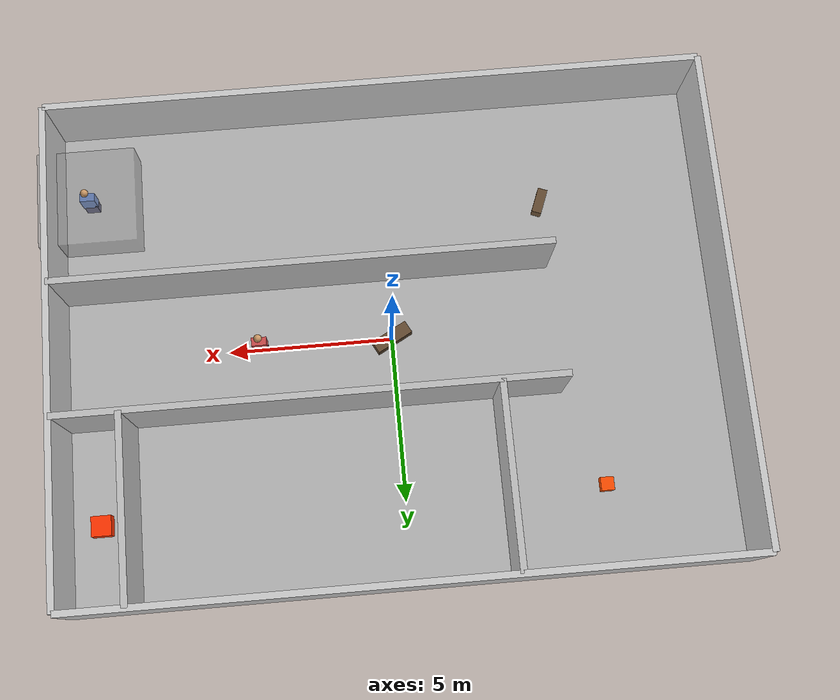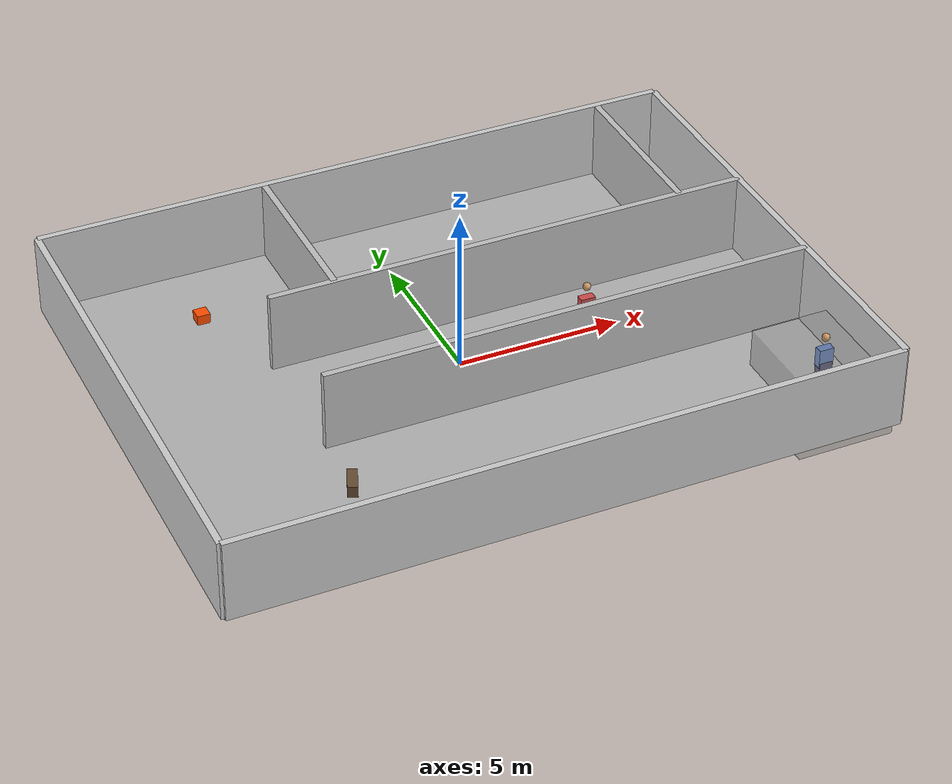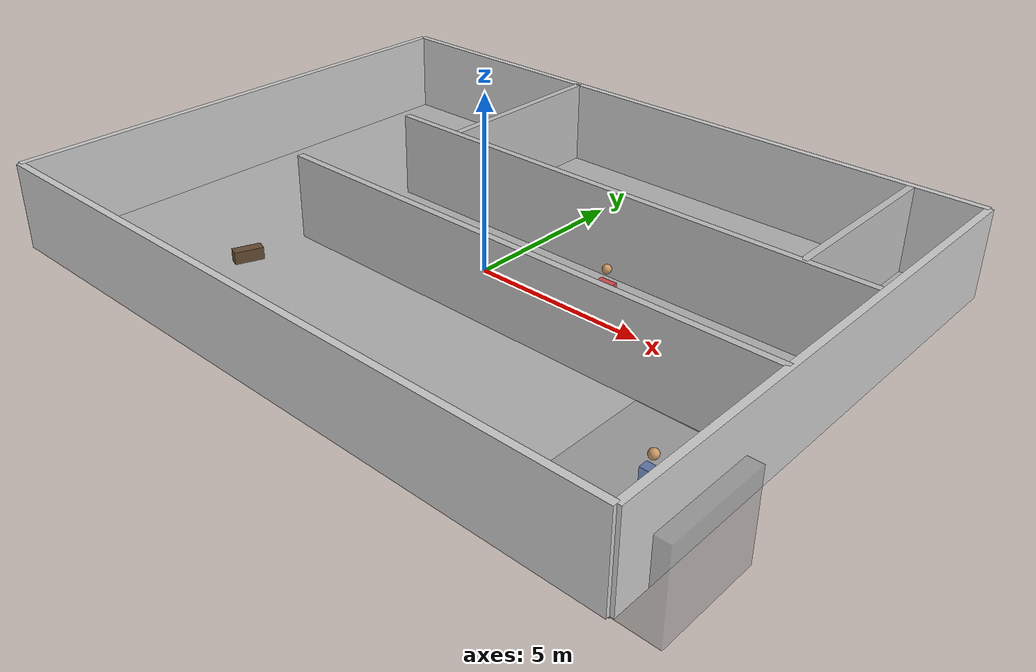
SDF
<sdf version="1.8">
 <world name="fire_building">
  <physics name="1ms" type="ignored">
   <max_step_size>0.001</max_step_size>
   <real_time_factor>1.0</real_time_factor>
  </physics>
  <plugin filename="gz-sim-physics-system" name="gz::sim::systems::Physics"/>
  <plugin filename="gz-sim-user-commands-system" name="gz::sim::systems::UserCommands"/>
  <plugin filename="gz-sim-scene-broadcaster-system" name="gz::sim::systems::SceneBroadcaster"/>
  <plugin filename="gz-sim-sensors-system" name="gz::sim::systems::Sensors">
   <render_engine>ogre2</render_engine>
  </plugin>
  <ambient>0.8 0.8 0.8 1</ambient>
  <background>0.3 0.3 0.3 1</background>
  <light name="sun" type="directional">
   <pose>0 0 10 0 0 0</pose>
   <diffuse>0.9 0.9 0.9 1</diffuse>
   <specular>0.3 0.3 0.3 1</specular>
   <direction>-0.5 0.1 -0.9</direction>
   <attenuation>
    <range>1000</range>
    <constant>0.9</constant>
    <linear>0.01</linear>
    <quadratic>0.001</quadratic>
   </attenuation>
  </light>
  <model name="ground">
   <static>true</static>
   <link name="floor">
    <collision name="col"><geometry><box><size>20 15 0.1</size></box></geometry></collision>
    <visual name="vis">
     <geometry><box><size>20 15 0.1</size></box></geometry>
     <material><ambient>0.7 0.7 0.7 1</ambient><diffuse>0.7 0.7 0.7 1</diffuse></material>
    </visual>
   </link>
  </model>
  <model name="wall_north">
   <static>true</static>
   <pose>0 7.5 1.25 0 0 0</pose>
   <link name="link">
    <collision name="col"><geometry><box><size>20 0.2 2.5</size></box></geometry></collision>
    <visual name="vis">
     <geometry><box><size>20 0.2 2.5</size></box></geometry>
     <material><ambient>0.8 0.8 0.8 1</ambient></material>
    </visual>
   </link>
  </model>
  <model name="wall_south">
   <static>true</static>
   <pose>0 -7.5 1.25 0 0 0</pose>
   <link name="link">
    <collision name="col"><geometry><box><size>20 0.2 2.5</size></box></geometry></collision>
    <visual name="vis">
     <geometry><box><size>20 0.2 2.5</size></box></geometry>
     <material><ambient>0.8 0.8 0.8 1</ambient></material>
    </visual>
   </link>
  </model>
  <model name="wall_east">
   <static>true</static>
   <pose>10 0 1.25 0 0 0</pose>
   <link name="link">
    <collision name="col"><geometry><box><size>0.2 15 2.5</size></box></geometry></collision>
    <visual name="vis">
     <geometry><box><size>0.2 15 2.5</size></box></geometry>
     <material><ambient>0.8 0.8 0.8 1</ambient></material>
    </visual>
   </link>
  </model>
  <model name="wall_west">
   <static>true</static>
   <pose>-10 0 1.25 0 0 0</pose>
   <link name="link">
    <collision name="col"><geometry><box><size>0.2 15 2.5</size></box></geometry></collision>
    <visual name="vis">
     <geometry><box><size>0.2 15 2.5</size></box></geometry>
     <material><ambient>0.8 0.8 0.8 1</ambient></material>
    </visual>
   </link>
  </model>
  <model name="wall_corridor_north">
   <static>true</static>
   <pose>2.5 2 1.25 0 0 0</pose>
   <link name="link">
    <collision name="col"><geometry><box><size>15 0.2 2.5</size></box></geometry></collision>
    <visual name="vis">
     <geometry><box><size>15 0.2 2.5</size></box></geometry>
     <material><ambient>0.75 0.75 0.75 1</ambient></material>
    </visual>
   </link>
  </model>
  <model name="wall_corridor_south">
   <static>true</static>
   <pose>2.5 -2 1.25 0 0 0</pose>
   <link name="link">
    <collision name="col"><geometry><box><size>15 0.2 2.5</size></box></geometry></collision>
    <visual name="vis">
     <geometry><box><size>15 0.2 2.5</size></box></geometry>
     <material><ambient>0.75 0.75 0.75 1</ambient></material>
    </visual>
   </link>
  </model>
  <model name="wall_vert_left">
   <static>true</static>
   <pose>-3 4.75 1.25 0 0 0</pose>
   <link name="link">
    <collision name="col"><geometry><box><size>0.2 5.5 2.5</size></box></geometry></collision>
    <visual name="vis">
     <geometry><box><size>0.2 5.5 2.5</size></box></geometry>
     <material><ambient>0.75 0.75 0.75 1</ambient></material>
    </visual>
   </link>
  </model>
  <model name="wall_vert_right">
   <static>true</static>
   <pose>8 4.75 1.25 0 0 0</pose>
   <link name="link">
    <collision name="col"><geometry><box><size>0.2 5.5 2.5</size></box></geometry></collision>
    <visual name="vis">
     <geometry><box><size>0.2 5.5 2.5</size></box></geometry>
     <material><ambient>0.75 0.75 0.75 1</ambient></material>
    </visual>
   </link>
  </model>
  <model name="fire_1">
   <static>true</static>
   <pose>-6 5 0.05 0 0 0</pose>
   <link name="link">
    <visual name="vis">
     <geometry><box><size>0.4 0.4 0.6</size></box></geometry>
     <material>
      <ambient>1.0 0.3 0.0 1</ambient>
      <diffuse>1.0 0.3 0.0 1</diffuse>
      <emissive>1.0 0.2 0.0 1</emissive>
     </material>
    </visual>
   </link>
  </model>
  <light name="fire_light_1" type="point">
   <pose>-6 5 0.8 0 0 0</pose>
   <diffuse>1.0 0.4 0.0 1</diffuse>
   <specular>0.5 0.2 0.0 1</specular>
   <attenuation><range>4</range><linear>0.5</linear><quadratic>0.2</quadratic></attenuation>
  </light>
  <model name="fire_2">
   <static>true</static>
   <pose>9 5 0.05 0 0 0</pose>
   <link name="link">
    <visual name="vis">
     <geometry><box><size>0.6 0.6 0.9</size></box></geometry>
     <material>
      <ambient>1.0 0.2 0.0 1</ambient>
      <diffuse>1.0 0.2 0.0 1</diffuse>
      <emissive>1.0 0.15 0.0 1</emissive>
     </material>
    </visual>
   </link>
  </model>
  <light name="fire_light_2" type="point">
   <pose>9 5 1.2 0 0 0</pose>
   <diffuse>1.0 0.3 0.0 1</diffuse>
   <specular>0.5 0.1 0.0 1</specular>
   <attenuation><range>5</range><linear>0.4</linear><quadratic>0.15</quadratic></attenuation>
  </light>
  <model name="smoke_room_c">
   <static>true</static>
   <pose>9 -5 0 0 0 0</pose>
   <link name="link">
    <visual name="smoke_vis">
     <geometry><box><size>3 3 2.5</size></box></geometry>
     <material><ambient>0.6 0.6 0.6 0.6</ambient><diffuse>0.6 0.6 0.6 0.6</diffuse></material>
     <transparency>0.5</transparency>
    </visual>
   </link>
  </model>
  <model name="survivor_1">
   <static>true</static>
   <pose>9 -5 0 0 0 0</pose>
   <link name="link">
    <collision name="torso_col">
     <pose>0 0 0.9 0 0 0</pose>
     <geometry><box><size>0.45 0.25 0.6</size></box></geometry>
    </collision>
    <visual name="torso_vis">
     <pose>0 0 0.9 0 0 0</pose>
     <geometry><box><size>0.45 0.25 0.6</size></box></geometry>
     <material><ambient>0.2 0.4 0.8 1</ambient></material>
    </visual>
    <collision name="head_col">
     <pose>0 0 1.55 0 0 0</pose>
     <geometry><sphere><radius>0.12</radius></sphere></geometry>
    </collision>
    <visual name="head_vis">
     <pose>0 0 1.55 0 0 0</pose>
     <geometry><sphere><radius>0.12</radius></sphere></geometry>
     <material><ambient>0.8 0.6 0.4 1</ambient></material>
    </visual>
    <collision name="legs_col">
     <pose>0 0 0.45 0 0 0</pose>
     <geometry><box><size>0.4 0.25 0.6</size></box></geometry>
    </collision>
    <visual name="legs_vis">
     <pose>0 0 0.45 0 0 0</pose>
     <geometry><box><size>0.4 0.25 0.6</size></box></geometry>
     <material><ambient>0.1 0.1 0.3 1</ambient></material>
    </visual>
   </link>
  </model>
  <model name="survivor_2">
   <static>true</static>
   <pose>4 0 0 0 0 0</pose>
   <link name="link">
    <collision name="torso_col">
     <pose>0 0 0.9 0 0 0</pose>
     <geometry><box><size>0.45 0.25 0.6</size></box></geometry>
    </collision>
    <visual name="torso_vis">
     <pose>0 0 0.9 0 0 0</pose>
     <geometry><box><size>0.45 0.25 0.6</size></box></geometry>
     <material><ambient>0.8 0.3 0.3 1</ambient></material>
    </visual>
    <collision name="head_col">
     <pose>0 0 1.55 0 0 0</pose>
     <geometry><sphere><radius>0.12</radius></sphere></geometry>
    </collision>
    <visual name="head_vis">
     <pose>0 0 1.55 0 0 0</pose>
     <geometry><sphere><radius>0.12</radius></sphere></geometry>
     <material><ambient>0.8 0.6 0.4 1</ambient></material>
    </visual>
    <collision name="legs_col">
     <pose>0 0 0.45 0 0 0</pose>
     <geometry><box><size>0.4 0.25 0.6</size></box></geometry>
    </collision>
    <visual name="legs_vis">
     <pose>0 0 0.45 0 0 0</pose>
     <geometry><box><size>0.4 0.25 0.6</size></box></geometry>
     <material><ambient>0.1 0.1 0.3 1</ambient></material>
    </visual>
   </link>
  </model>
  <model name="debris_1">
   <static>true</static>
   <pose>0 0 0.2 0 0 0.5</pose>
   <link name="link">
    <collision name="col"><geometry><box><size>1.2 0.4 0.4</size></box></geometry></collision>
    <visual name="vis">
     <geometry><box><size>1.2 0.4 0.4</size></box></geometry>
     <material><ambient>0.4 0.3 0.2 1</ambient></material>
    </visual>
   </link>
  </model>
  <model name="debris_2">
   <static>true</static>
   <pose>-5 -4 0.2 0 0 1.2</pose>
   <link name="link">
    <collision name="col"><geometry><box><size>0.8 0.3 0.4</size></box></geometry></collision>
    <visual name="vis">
     <geometry><box><size>0.8 0.3 0.4</size></box></geometry>
     <material><ambient>0.4 0.3 0.2 1</ambient></material>
    </visual>
   </link>
  </model>
 </world>
</sdf>
